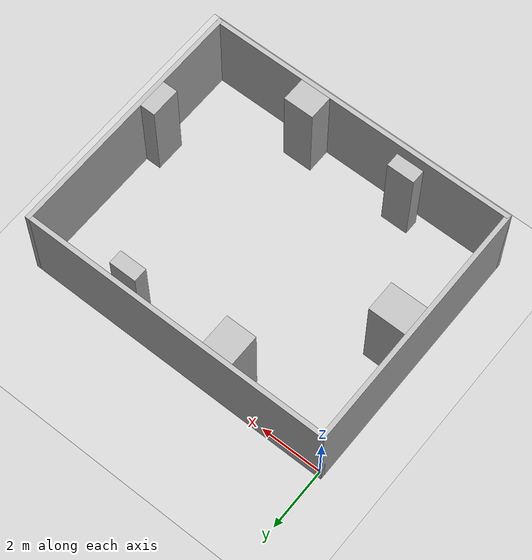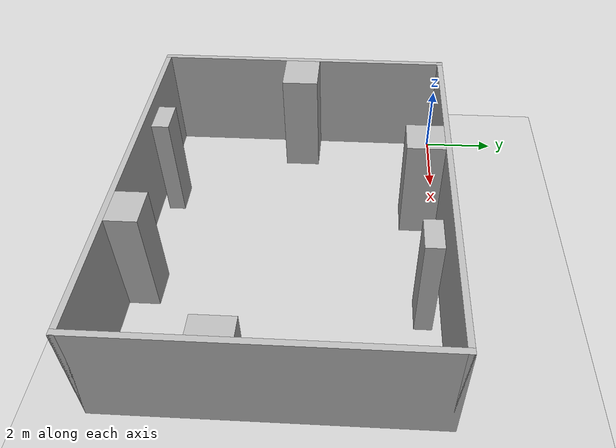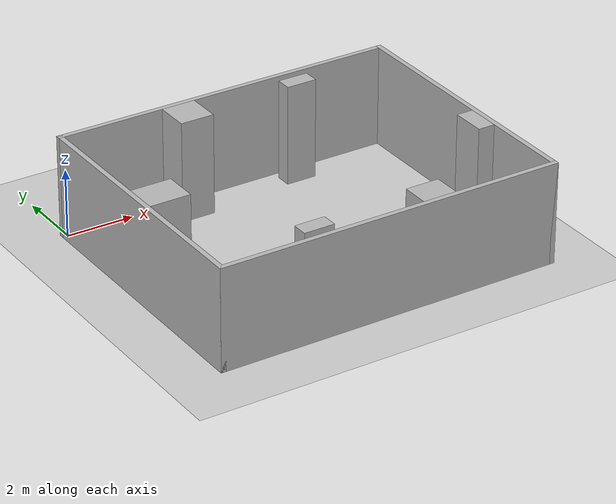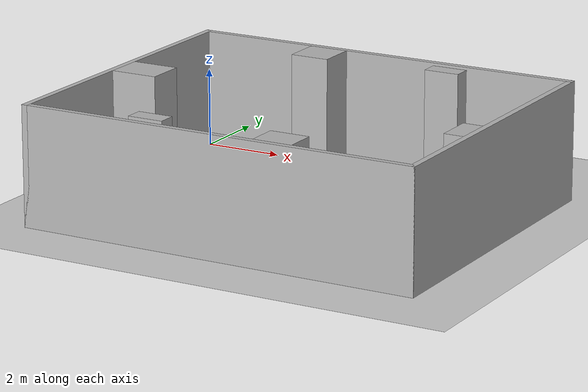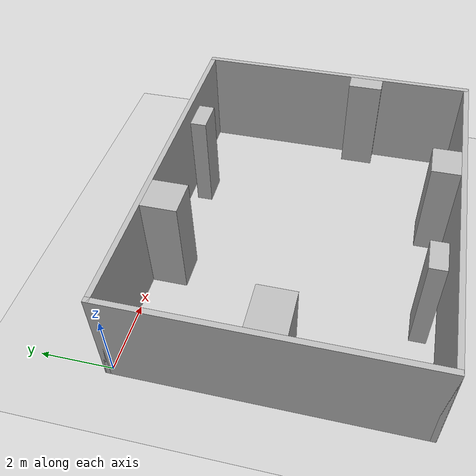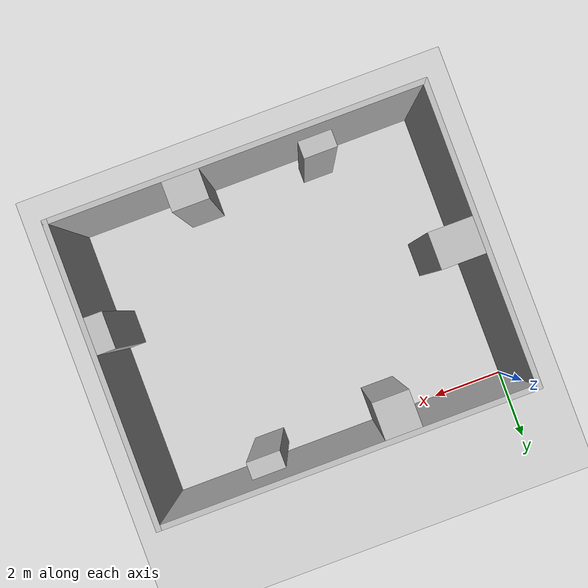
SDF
<?xml version="1.0" ?>
<sdf version="1.6">
  <world name="bump_room_10x8">

    <include><uri>model://ground_plane</uri></include>
    <include><uri>model://sun</uri></include>

    <gui>
      <camera name="user_camera">
        <pose>5.0 -4.0 17 0 1.5708 0</pose>
        <projection_type>orthographic</projection_type>
      </camera>
    </gui>

    <model name="bump_room_10x8_walls">
      <static>true</static>
      <pose>0 0 0 0 0 0</pose>
      <link name="link">

        <!-- Room walls: interior x 0..10, y -8..0 (10 m x 8 m) -->
        <visual name="v_wall_east"><pose>10.075 -4.0 1.5 0 0 0</pose>
          <geometry><box><size>0.15 8.3 3.0</size></box></geometry>
        </visual>
        <collision name="c_wall_east"><pose>10.075 -4.0 1.5 0 0 0</pose>
          <geometry><box><size>0.15 8.3 3.0</size></box></geometry>
        </collision>
        <visual name="v_wall_west"><pose>-0.075 -4.0 1.5 0 0 0</pose>
          <geometry><box><size>0.15 8.3 3.0</size></box></geometry>
        </visual>
        <collision name="c_wall_west"><pose>-0.075 -4.0 1.5 0 0 0</pose>
          <geometry><box><size>0.15 8.3 3.0</size></box></geometry>
        </collision>
        <visual name="v_wall_north"><pose>5.0 0.075 1.5 0 0 0</pose>
          <geometry><box><size>10.3 0.15 3.0</size></box></geometry>
        </visual>
        <collision name="c_wall_north"><pose>5.0 0.075 1.5 0 0 0</pose>
          <geometry><box><size>10.3 0.15 3.0</size></box></geometry>
        </collision>
        <visual name="v_wall_south"><pose>5.0 -8.075 1.5 0 0 0</pose>
          <geometry><box><size>10.3 0.15 3.0</size></box></geometry>
        </visual>
        <collision name="c_wall_south"><pose>5.0 -8.075 1.5 0 0 0</pose>
          <geometry><box><size>10.3 0.15 3.0</size></box></geometry>
        </collision>

        <!-- Robot travels counter-clockwise with the wall on its RIGHT: east wall N-bound, north wall W-bound, west wall S-bound, south wall E-bound -->
        <!-- EAST wall: flush bump-out, depth 0.5 m x 1.0 m wide -->
        <visual name="v_east_bump_0p5"><pose>9.75 -5.0 1.5 0 0 0</pose>
          <geometry><box><size>0.5 1.0 3.0</size></box></geometry>
        </visual>
        <collision name="c_east_bump_0p5"><pose>9.75 -5.0 1.5 0 0 0</pose>
          <geometry><box><size>0.5 1.0 3.0</size></box></geometry>
        </collision>
        <!-- NORTH wall: pillar (0.90 x 0.46 m) with 0.24 m gap to the wall, then flush bump-out depth 1.0 m -->
        <visual name="v_north_pillar"><pose>7.0 -0.47 1.5 0 0 0</pose>
          <geometry><box><size>0.9 0.46 3.0</size></box></geometry>
        </visual>
        <collision name="c_north_pillar"><pose>7.0 -0.47 1.5 0 0 0</pose>
          <geometry><box><size>0.9 0.46 3.0</size></box></geometry>
        </collision>
        <visual name="v_north_bump_1p0"><pose>3.5 -0.5 1.5 0 0 0</pose>
          <geometry><box><size>1.0 1.0 3.0</size></box></geometry>
        </visual>
        <collision name="c_north_bump_1p0"><pose>3.5 -0.5 1.5 0 0 0</pose>
          <geometry><box><size>1.0 1.0 3.0</size></box></geometry>
        </collision>
        <!-- WEST wall: flush bump-out, depth 1.2 m x 1.0 m wide -->
        <visual name="v_west_bump_1p2"><pose>0.6 -4.0 1.5 0 0 0</pose>
          <geometry><box><size>1.2 1.0 3.0</size></box></geometry>
        </visual>
        <collision name="c_west_bump_1p2"><pose>0.6 -4.0 1.5 0 0 0</pose>
          <geometry><box><size>1.2 1.0 3.0</size></box></geometry>
        </collision>
        <!-- SOUTH wall: pillar with 0.24 m gap, then flush bump-out depth 0.8 m -->
        <visual name="v_south_pillar"><pose>3.0 -7.53 1.5 0 0 0</pose>
          <geometry><box><size>0.9 0.46 3.0</size></box></geometry>
        </visual>
        <collision name="c_south_pillar"><pose>3.0 -7.53 1.5 0 0 0</pose>
          <geometry><box><size>0.9 0.46 3.0</size></box></geometry>
        </collision>
        <visual name="v_south_bump_0p8"><pose>6.5 -7.6 1.5 0 0 0</pose>
          <geometry><box><size>1.0 0.8 3.0</size></box></geometry>
        </visual>
        <collision name="c_south_bump_0p8"><pose>6.5 -7.6 1.5 0 0 0</pose>
          <geometry><box><size>1.0 0.8 3.0</size></box></geometry>
        </collision>
      </link>
    </model>

  </world>
</sdf>
